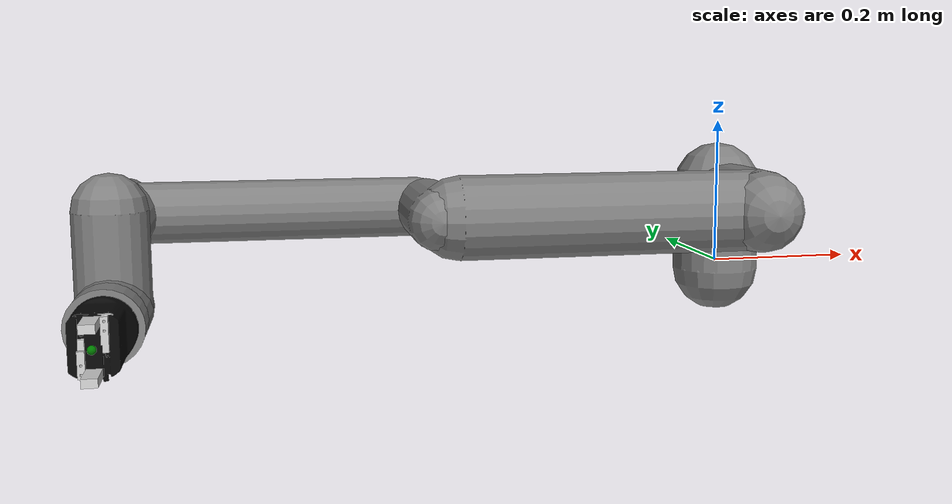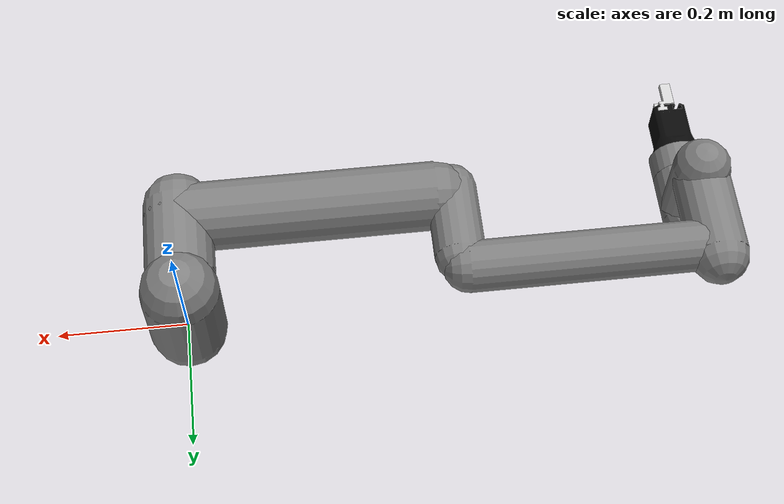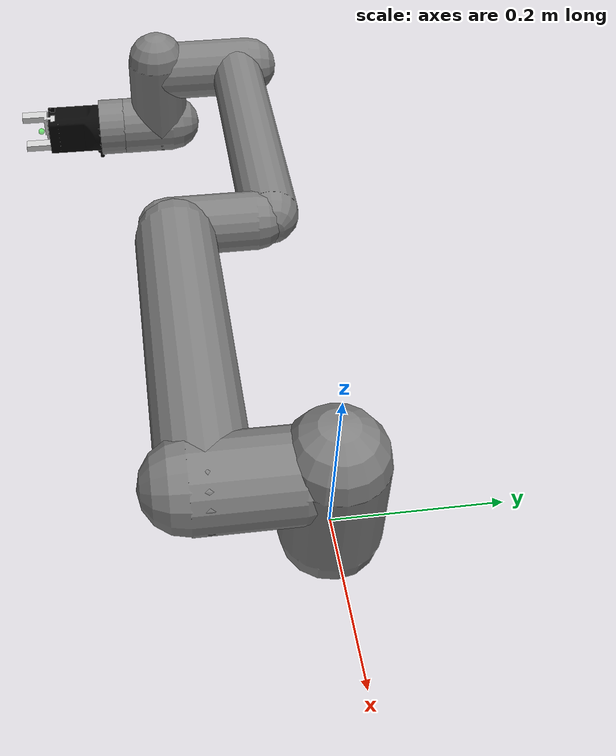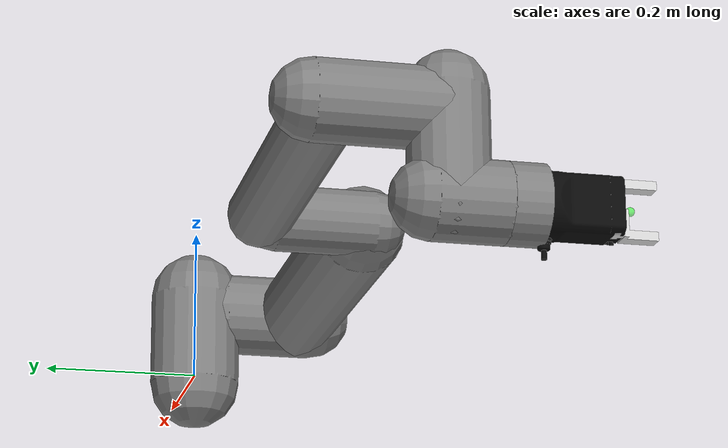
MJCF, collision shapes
<mujoco model="ur5">
  <!-- 编译器配置：弧度制，网格文件目录，自动计算关节限位 -->
  <compiler angle="radian" autolimits="true"/>

  <!-- 仿真选项：使用快速隐式积分器 -->
  <option integrator="implicitfast"/>

  <!-- 默认设置 -->
  <default>
    <default class="ur5">
      <!-- 材质 -->
      <material specular="0.5" shininess="0.25"/>

      <!-- 关节默认：绕Y轴，范围±2π，惯性0.1，物理阻尼5 -->
      <joint axis="0 1 0" range="-6.28319 6.28319" armature="0.1" damping="5"/>

      <!-- 执行器参数：PID控制器参数
              增益类型：固定
              偏置类型：仿射
              控制量范围：-2pi～2pi
              比例增益 = 2000
              偏置参数(I增益, D增益, 偏置) ="0 -2000 -400"
              力矩/力输出范围
      -->
      <general gaintype="fixed" biastype="affine" ctrlrange="-6.2831 6.2831" gainprm="2000" biasprm="0 -2000 -50" forcerange="-150 150"/>

      <default class="size3">
        <default class="size3_limited">
          <joint range="-3.1415 3.1415"/>
          <general ctrlrange="-3.1415 3.1415"/>
        </default>
      </default>
      <default class="size1">
        <general gainprm="500" biasprm="0 -500 -10" forcerange="-28 28"/>
      </default>
      <default class="visual">
        <geom type="mesh" contype="0" conaffinity="0" group="2"/>
      </default>
      <default class="collision">
        <geom type="capsule" group="3"/>
        <default class="eef_collision">
          <geom type="cylinder"/>
        </default>
      </default>
      <site size="0.001" rgba="0.5 0.5 0.5 0.3" group="4"/>
    </default>
  </default>

  <!-- 资产定义 -->
  <asset>
    <!-- 定义材料颜色 -->
    <material class="ur5" name="black" rgba="0.033 0.033 0.033 1"/>
    <material class="ur5" name="jointgray" rgba="0.278 0.278 0.278 1"/>
    <material class="ur5" name="linkgray" rgba="0.82 0.82 0.82 1"/>
    <material class="ur5" name="urblue" rgba="0.49 0.678 0.8 1"/>

    <!-- 导入OBJ网格文件 -->
    <mesh file="ur5/base_0.obj"/>
    <mesh file="ur5/base_1.obj"/>
    <mesh file="ur5/shoulder_0.obj"/>
    <mesh file="ur5/shoulder_1.obj"/>
    <mesh file="ur5/shoulder_2.obj"/>
    <mesh file="ur5/upperarm_0.obj"/>
    <mesh file="ur5/upperarm_1.obj"/>
    <mesh file="ur5/upperarm_2.obj"/>
    <mesh file="ur5/upperarm_3.obj"/>
    <mesh file="ur5/forearm_0.obj"/>
    <mesh file="ur5/forearm_1.obj"/>
    <mesh file="ur5/forearm_2.obj"/>
    <mesh file="ur5/forearm_3.obj"/>
    <mesh file="ur5/wrist1_0.obj"/>
    <mesh file="ur5/wrist1_1.obj"/>
    <mesh file="ur5/wrist1_2.obj"/>
    <mesh file="ur5/wrist2_0.obj"/>
    <mesh file="ur5/wrist2_1.obj"/>
    <mesh file="ur5/wrist2_2.obj"/>
    <mesh file="ur5/wrist3.obj"/>

    <mesh file="gripper/gripper_body.stl" scale="0.001 0.001 0.001"/>
    <mesh file="gripper/gripper_finger01.stl" scale="0.001 0.001 0.001"/>
    <mesh file="gripper/gripper_finger02.stl" scale="0.001 0.001 0.001"/>
  </asset>

  <!-- 世界结构 -->
  <worldbody>
    <light name="spotlight" mode="targetbodycom" target="wrist_2_link" pos="0 -1 2"/>
    <body name="base" quat="0 0 0 -1" childclass="ur5">
      <!-- mass质量，pos质心，diaginertia转动惯量 -->
      <inertial mass="4.0" pos="0 0 0" diaginertia="0.00443333156 0.00443333156 0.0072"/>
      <geom mesh="base_0" material="black" class="visual"/>
      <geom mesh="base_1" material="jointgray" class="visual"/>

      <body name="shoulder_link" pos="0 0 0.089159">
        <inertial mass="3.7" pos="0.0 -0.00193 -0.02561" diaginertia="0.01497235833 0.01497235833 0.01040625"/>
        <joint name="shoulder_pan_joint" class="size3" axis="0 0 1"/>
        <geom mesh="shoulder_0" material="urblue" class="visual"/>
        <geom mesh="shoulder_1" material="black" class="visual"/>
        <geom mesh="shoulder_2" material="jointgray" class="visual"/>
        <geom class="collision" size="0.06 0.06" pos="0 0 -0.04"/>

        <body name="upper_arm_link" pos="0 0.138 0" quat="1 0 1 0">
          <inertial mass="8.3930" pos="-0.2125 0.0 0.11336" diaginertia="0.13388583542 0.13388583542 0.0151074"/>
          <joint name="shoulder_lift_joint" class="size3"/>
          <geom mesh="upperarm_0" material="linkgray" class="visual"/>
          <geom mesh="upperarm_1" material="black" class="visual"/>
          <geom mesh="upperarm_2" material="jointgray" class="visual"/>
          <geom mesh="upperarm_3" material="urblue" class="visual"/>
          <geom class="collision" pos="0 -0.04 0" quat="1 1 0 0" size="0.054 0.06"/>
          <geom class="collision" size="0.054 0.2" pos="0 0 0.2"/>

          <body name="forearm_link" pos="0 -0.131 0.425">
            <inertial mass="2.33" pos="-0.24225 0.0 0.0265" diaginertia="0.03121680352 0.03121680352 0.004095"/>
            <joint name="elbow_joint" class="size3_limited"/>
            <geom mesh="forearm_0" material="urblue" class="visual"/>
            <geom mesh="forearm_1" material="linkgray" class="visual"/>
            <geom mesh="forearm_2" material="black" class="visual"/>
            <geom mesh="forearm_3" material="jointgray" class="visual"/>
            <geom class="collision" pos="0 0.08 0" quat="1 1 0 0" size="0.040 0.06"/>
            <geom class="collision" size="0.040 0.19" pos="0 0 0.2"/>

            <body name="wrist_1_link" pos="0 0 0.392" quat="0.7071068 0 0.7071068 0">
              <inertial mass="1.2190" pos="0.0 -0.01634 -0.0018" diaginertia="0.00201389 0.00201389 0.0021942"/>
              <joint name="wrist_1_joint" class="size1"/>
              <geom mesh="wrist1_0" material="black" class="visual"/>
              <geom mesh="wrist1_1" material="urblue" class="visual"/>
              <geom mesh="wrist1_2" material="jointgray" class="visual"/>
              <geom class="collision" pos="0 0.05 0" quat="0.7071068 0.7071068 0 0" size="0.045 0.07"/>

              <body name="wrist_2_link" pos="0 0.127 0">
                <inertial mass="1.2190" pos="0.0 0.01634 -0.0018" diaginertia="0.00183104 0.00183104 0.0021942"/>
                <joint name="wrist_2_joint" axis="0 0 1" class="size1"/>
                <geom mesh="wrist2_0" material="black" class="visual"/>
                <geom mesh="wrist2_1" material="urblue" class="visual"/>
                <geom mesh="wrist2_2" material="jointgray" class="visual"/>
                <geom class="collision" size="0.045 0.06" pos="0 0 0.04"/>
                <geom class="collision" pos="0 0.02 0.1" quat="0.7071068 0.7071068 0 0" size="0.045 0.04"/>

                <body name="wrist_3_link" pos="0 0 0.1">
                  <inertial mass="0.1879" pos="0.0 0.0 -0.001159" diaginertia="8.06247583e-05 8.06247583e-05 0.0001321171875"/>
                  <joint name="wrist_3_joint" class="size1"/>
                  <geom material="linkgray" mesh="wrist3" class="visual"/>
                  <geom class="eef_collision" pos="0 0.08 0" quat="0.7071068 0.7071068 0 0" size="0.045 0.02"/>
                  <site name="attachment_site" pos="0 0.1 0" quat="0 1 0 0"/>

                  <!-- 腕部相机 -->
                  <!-- pos: 相机位置微调，避免被夹爪挡住 -->
                  <!-- quat: 旋转相机朝向，让它看向手指尖方向 -->
                  <!-- fovy: 视野角度，45-60度适合近距离抓取 -->
                  <camera name="wrist_camera" pos="0 0.1 0.1" quat="0.707 0.707 0 0" fovy="50"/>

                  <body name="gripper_base" pos="0 0.0823 0" quat="1 0 0 0">
                    <!-- 夹爪基座 (黑色圆柱) -->
                    <inertial pos="0 0 0" mass="0.3" diaginertia="0.001 0.001 0.001"/>
                    <!-- 关闭基座与手指的碰撞：contype=2, conaffinity=2（同层不碰撞） -->
                    <geom type="mesh" mesh="gripper_body" material="black" contype="2" conaffinity="2"/>

                    <!-- 左手指 (滑动关节) -->
                    <body name="left_finger" pos="0 0 0">
                      <inertial pos="0 0 0" mass="0.1" diaginertia="0.001 0.001 0.001"/>
                      <!-- 限制滑动范围 0 到 0.06米 -->
                      <joint name="finger_joint1" type="slide" axis="0 0 1" range="0 0.06" damping="0.1"/>
                      <geom type="mesh" mesh="gripper_finger01" material="linkgray" friction="1.5 0.05 0.001" contype="2" conaffinity="2"/>
                    </body>
                    <!-- 右手指 (滑动关节) -->
                    <body name="right_finger" pos="0 0 0">
                      <inertial pos="0 0 0" mass="0.1" diaginertia="0.001 0.001 0.001"/>
                      <joint name="finger_joint2" type="slide" axis="0 0 -1" range="0 0.06" damping="0.1"/>
                      <geom type="mesh" mesh="gripper_finger02" material="linkgray" friction="1.5 0.05 0.001" contype="2" conaffinity="2"/>
                    </body>
                    <!-- TCP (Tool Center Point) -->
                    <!-- 坐标系相对于 gripper_base -->
                    <site name="tcp" pos="0 0.115 0" size="0.005" rgba="0 1 0 0.5" group="0"/>
                  </body>
                </body>
              </body>
            </body>
          </body>
        </body>
      </body>
    </body>
  </worldbody>

  <!-- 等式约束：让夹爪左右手指镜像同步运动 -->
  <equality>
    <joint joint1="finger_joint2" joint2="finger_joint1" polycoef="0 1 0 0 0"/>
  </equality>

  <!-- 执行器 -->
  <actuator>
    <general class="size3" name="shoulder_pan" joint="shoulder_pan_joint"/>
    <general class="size3" name="shoulder_lift" joint="shoulder_lift_joint"/>
    <general class="size3_limited" name="elbow" joint="elbow_joint"/>
    <general class="size1" name="wrist_1" joint="wrist_1_joint"/>
    <general class="size1" name="wrist_2" joint="wrist_2_joint"/>
    <general class="size1" name="wrist_3" joint="wrist_3_joint"/>

    <!-- 夹爪电机 -->
    <!-- 使用位置控制，kp设大一点保证夹紧力 -->
    <position name="close_gripper" joint="finger_joint1" kp="500" kv="20" ctrlrange="0 0.06" forcerange="-100 100"/>

  </actuator>

  <!-- 关键帧 -->
  <!-- qpos长度为8（6关节+2手指），ctrl长度为7（6执行器+1夹爪电机） -->
  <keyframe>
    <key name="home"
         qpos="-1.5708 -1.5708 1.5708 -1.5708 -1.5708 0 0 0"
         ctrl="-1.5708 -1.5708 1.5708 -1.5708 -1.5708 0 0"/>
  </keyframe>
</mujoco>
